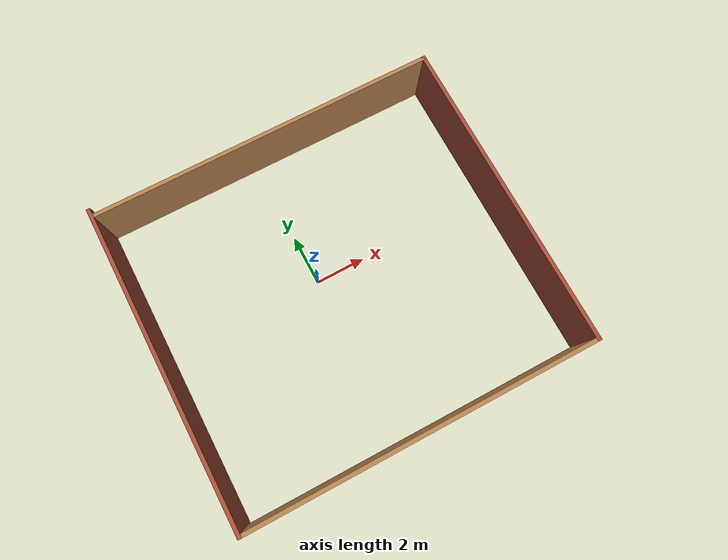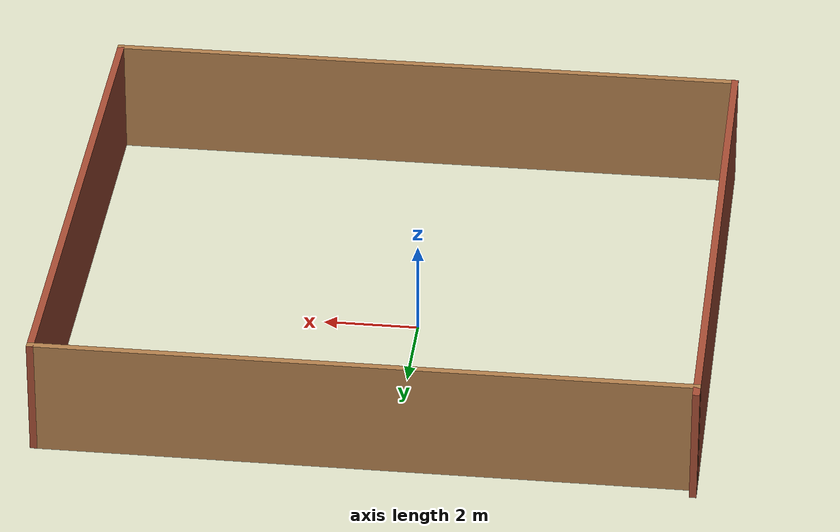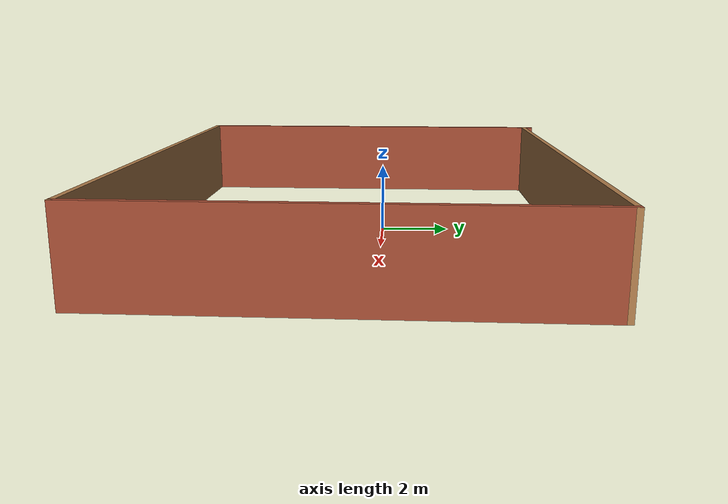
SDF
<?xml version='1.0'?>
<sdf version='1.6'>
  <model name='open_spaces'>
    <pose frame=''>0.560616 -0.599352 0 0 -0 0</pose>
    <link name='Wall_10'>
      <collision name='Wall_10_Collision'>
        <geometry>
          <box>
            <size>12.5 0.15 2.5</size>
          </box>
        </geometry>
        <pose frame=''>0 0 1.25 0 -0 0</pose>
      </collision>
      <visual name='Wall_10_Visual'>
        <pose frame=''>0 0 1.25 0 -0 0</pose>
        <geometry>
          <box>
            <size>12.5 0.15 2.5</size>
          </box>
        </geometry>
        <material>
          <script>
            <uri>file://media/materials/scripts/gazebo.material</uri>
            <name>Gazebo/Bricks</name>
          </script>
          <ambient>1 1 1 1</ambient>
        </material>
        <meta>
          <layer>0</layer>
        </meta>
      </visual>
      <pose frame=''>-6.8 0 0 0 -0 -1.5708</pose>
    </link>
    <link name='Wall_11'>
      <collision name='Wall_11_Collision'>
        <geometry>
          <box>
            <size>13.75 0.15 2.5</size>
          </box>
        </geometry>
        <pose frame=''>0 0 1.25 0 -0 0</pose>
      </collision>
      <visual name='Wall_11_Visual'>
        <pose frame=''>0 0 1.25 0 -0 0</pose>
        <geometry>
          <box>
            <size>13.75 0.15 2.5</size>
          </box>
        </geometry>
        <material>
          <script>
            <uri>file://media/materials/scripts/gazebo.material</uri>
            <name>Gazebo/Wood</name>
          </script>
          <ambient>1 1 1 1</ambient>
        </material>
        <meta>
          <layer>0</layer>
        </meta>
      </visual>
      <pose frame=''>-0 -6.175 0 0 -0 0</pose>
    </link>
    <link name='Wall_12'>
      <collision name='Wall_12_Collision'>
        <geometry>
          <box>
            <size>12.25 0.15 2.5</size>
          </box>
        </geometry>
        <pose frame=''>0 0 1.25 0 -0 0</pose>
      </collision>
      <visual name='Wall_12_Visual'>
        <pose frame=''>0 0 1.25 0 -0 0</pose>
        <geometry>
          <box>
            <size>12.25 0.15 2.5</size>
          </box>
        </geometry>
        <material>
          <script>
            <uri>file://media/materials/scripts/gazebo.material</uri>
            <name>Gazebo/Bricks</name>
          </script>
          <ambient>1 1 1 1</ambient>
        </material>
        <meta>
          <layer>0</layer>
        </meta>
      </visual>
      <pose frame=''>6.8 -0.125 0 0 -0 1.5708</pose>
    </link>
    <link name='Wall_13'>
      <collision name='Wall_13_Collision'>
        <geometry>
          <box>
            <size>13.75 0.15 2.5</size>
          </box>
        </geometry>
        <pose frame=''>0 0 1.25 0 -0 0</pose>
      </collision>
      <visual name='Wall_13_Visual'>
        <pose frame=''>0 0 1.25 0 -0 0</pose>
        <geometry>
          <box>
            <size>13.75 0.15 2.5</size>
          </box>
        </geometry>
        <material>
          <script>
            <uri>file://media/materials/scripts/gazebo.material</uri>
            <name>Gazebo/Wood</name>
          </script>
          <ambient>1 1 1 1</ambient>
        </material>
        <meta>
          <layer>0</layer>
        </meta>
      </visual>
      <pose frame=''>-0 5.925 0 0 -0 3.14159</pose>
    </link>
    <static>1</static>
  </model>
</sdf>
